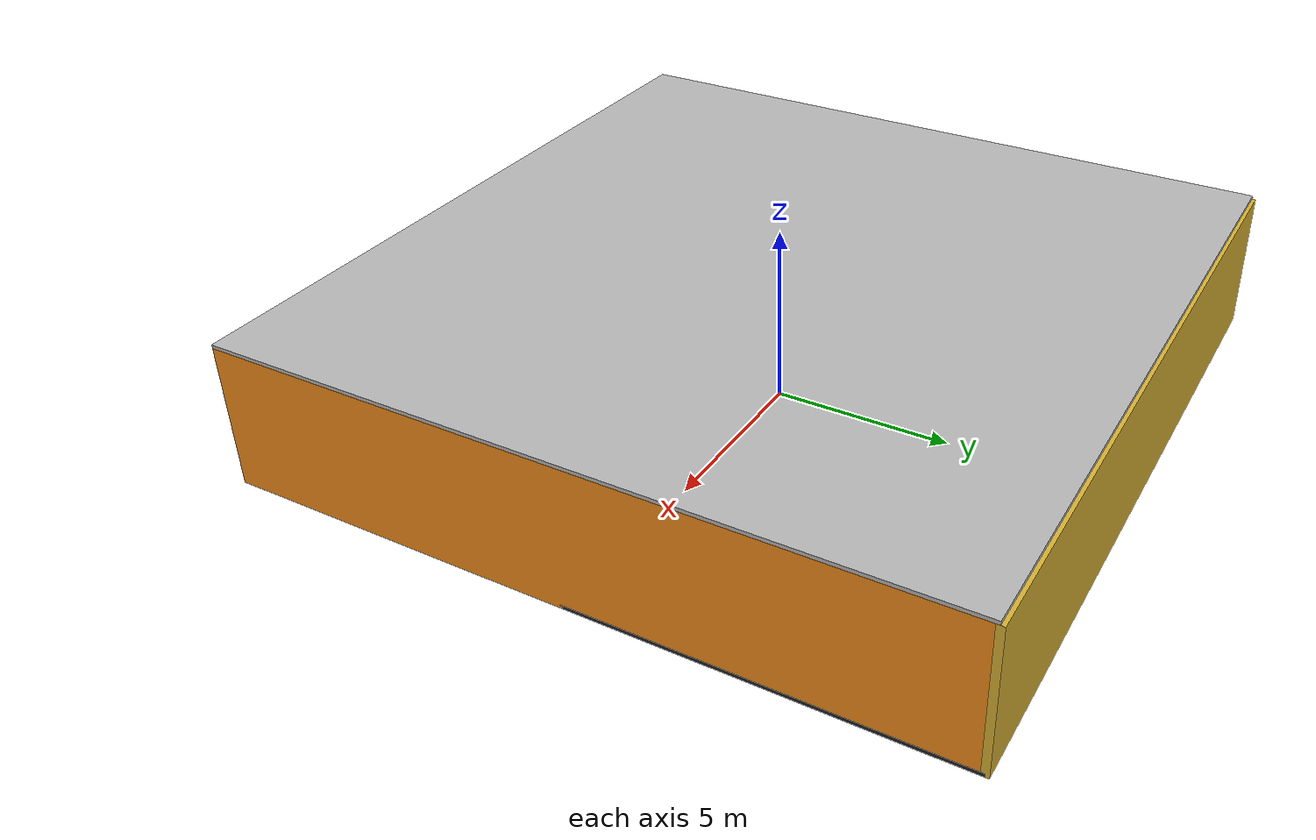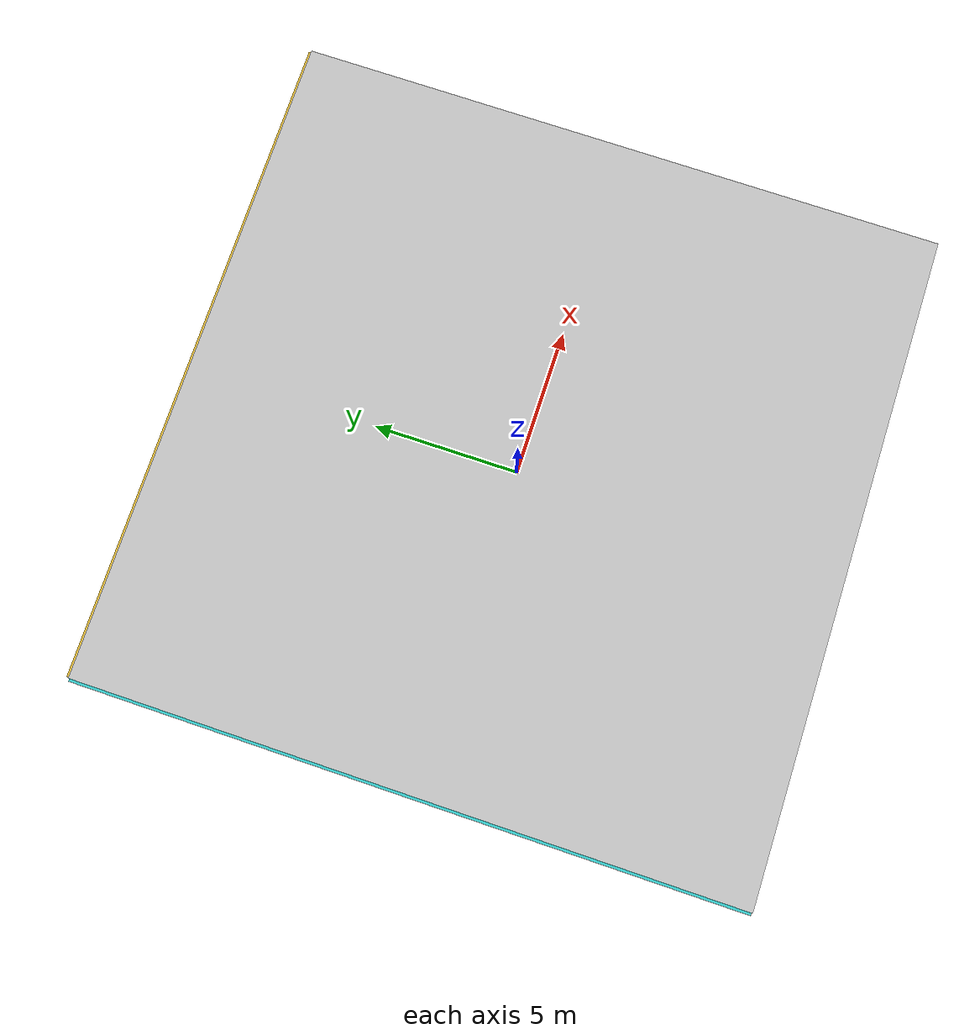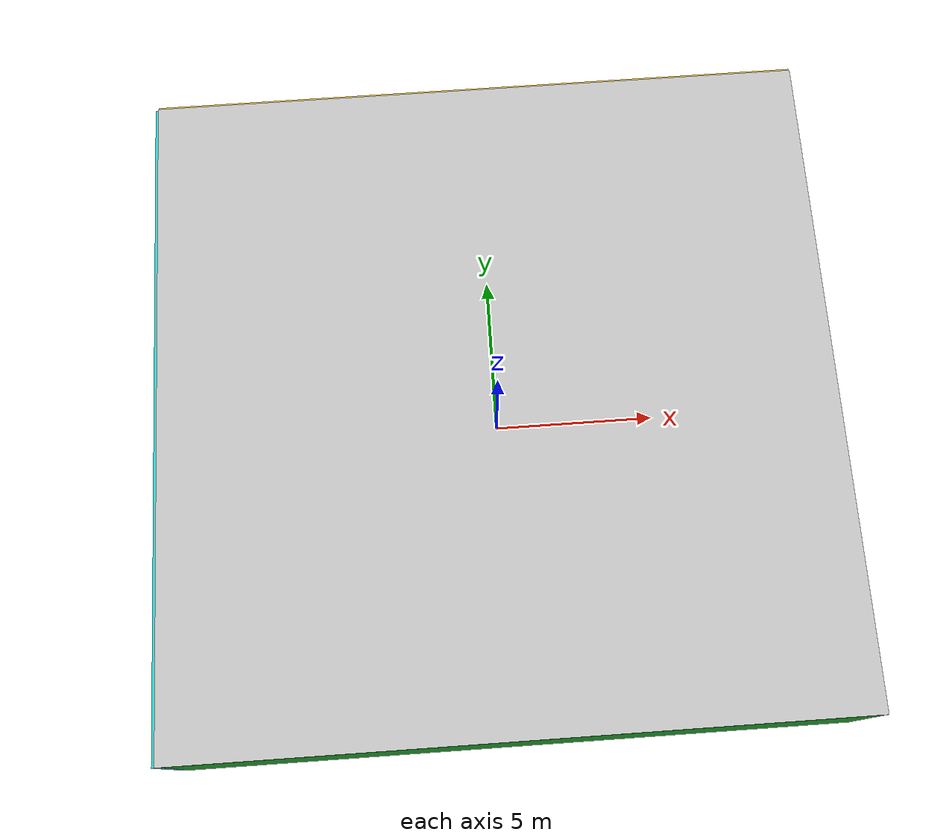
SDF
<sdf version="1.4">
 <world name="default">
  <physics type="ode">
   <max_step_size>0.001</max_step_size>
   <real_time_factor>1</real_time_factor>
   <real_time_update_rate>1000</real_time_update_rate>
   <gravity>0 0 -9.8</gravity>
  </physics>
  <scene><ambient>0.4 0.4 0.4 1</ambient><background>0.7 0.7 0.7 1</background><shadows>1</shadows></scene>
  <model name="Surrounding">
   <static>1</static>
   <link name="Ceiling">
    <collision name="Ceiling_Collision"><geometry><box><size>20 20 0.1</size></box></geometry></collision>
    <visual name="Ceiling_Visual">
     <geometry><box><size>20 20 0.1</size></box></geometry>
     <material>
      <script><uri>file://media/materials/scripts/gazebo.material</uri><name>Gazebo/LightOff</name></script>
     </material>
    </visual>
    <pose>0 0 4.05 0 0 0</pose>
   </link>
   <link name="Wall_South">
    <collision name="Wall_South_Collision">
     <geometry><box><size>20 0 4</size></box></geometry>
     <pose>0 0 2 0 -0 0</pose>
    </collision>
    <visual name="Wall_South_Visual">
     <pose>0 0 2 0 -0 0</pose>
     <geometry><box><size>20 0 4</size></box></geometry>
     <material>
      <script><uri>file://media/materials/scripts/gazebo.material</uri><name>Gazebo/GreenGlow</name></script>
     </material>
    </visual>
    <velocity_decay><linear>0</linear><angular>0</angular></velocity_decay>
    <pose>0 -10 0 0 -0 0</pose>
   </link>
   <link name="Wall_East">
    <collision name="Wall_21_Collision">
     <geometry><box><size>20 0 4</size></box></geometry>
     <pose>0 0 2 0 -0 0</pose>
    </collision>
    <visual name="Wall_21_Visual">
     <pose>0 0 2 0 -0 0</pose>
     <geometry><box><size>20 0 4</size></box></geometry>
     <material>
      <script><uri>file://media/materials/scripts/gazebo.material</uri><name>Gazebo/Orange</name></script>
     </material>
    </visual>
    <velocity_decay><linear>0</linear><angular>0</angular></velocity_decay>
    <pose>10 0 0 0 -0 1.5708</pose>
   </link>
   <link name="Wall_North">
    <collision name="Wall_22_Collision">
     <geometry><box><size>20 0.2 4</size></box></geometry>
     <pose>0 0 2 0 -0 0</pose>
    </collision>
    <visual name="Wall_22_Visual">
     <pose>0 0 2 0 -0 0</pose>
     <geometry><box><size>20 0.2 4</size></box></geometry>
     <material>
      <script><uri>file://media/materials/scripts/gazebo.material</uri><name>Gazebo/Gold</name></script>
     </material>
    </visual>
    <velocity_decay><linear>0</linear><angular>0</angular></velocity_decay>
    <pose>0 10 0 0 -0 0</pose>
   </link>
   <link name="Wall_West">
    <collision name="Wall_23_Collision">
     <geometry><box><size>20 0.2 4</size></box></geometry>
     <pose>0 0 2 0 -0 0</pose>
    </collision>
    <visual name="Wall_23_Visual">
     <pose>0 0 2 0 -0 0</pose>
     <geometry><box><size>20 0.2 4</size></box></geometry>
     <material>
      <script><uri>file://media/materials/scripts/gazebo.material</uri><name>Gazebo/TurquoiseGlow</name></script>
     </material>
    </visual>
    <velocity_decay><linear>0</linear><angular>0</angular></velocity_decay>
    <pose>-10 0 0 0 0 -1.5708</pose>
   </link>
   <link name="Ground_link">
    <collision name="collision">
     <pose>0 0 .05 0 -0 0</pose>
     <geometry><box><size>20 20 0.1</size></box></geometry>
    </collision>
    <visual name="visual">
     <pose>0 0 .05 0 -0 0</pose>
     <geometry><box><size>20 20 0.1</size></box></geometry>
     <material>
      <script><uri>file://media/materials/scripts/gazebo.material</uri><name>Gazebo/Black</name></script>
     </material>
    </visual>
   </link>
   <static>1</static>
  </model>
  <spherical_coordinates>
   <surface_model>EARTH_WGS84</surface_model>
   <latitude_deg>0</latitude_deg>
   <longitude_deg>0</longitude_deg>
   <elevation>0</elevation>
   <heading_deg>0</heading_deg>
  </spherical_coordinates>
  <light name="lightball_0" type="diffuse">
   <diffuse>0.8 0.8 0.8 1</diffuse>
   <specular>0.2 0.2 0.2 1</specular>
   <attenuation>
    <range>100</range>
    <constant>0.7</constant>
    <linear>0.01</linear>
    <quadratic>0.001</quadratic>
   </attenuation>
   <direction>-0.5 0.1 -0.9</direction>
   <pose>-8.20583627101 6.91166579624 1.84177824782 0 0 0</pose>
  </light>
  <light name="lightball_1" type="diffuse">
   <diffuse>0.8 0.8 0.8 1</diffuse>
   <specular>0.2 0.2 0.2 1</specular>
   <attenuation>
    <range>100</range>
    <constant>0.7</constant>
    <linear>0.01</linear>
    <quadratic>0.001</quadratic>
   </attenuation>
   <direction>-0.5 0.1 -0.9</direction>
   <pose>-0.273360922326 3.80337348867 3.53818586408 0 0 0</pose>
  </light>
  <light name="lightball_2" type="diffuse">
   <diffuse>0.8 0.8 0.8 1</diffuse>
   <specular>0.2 0.2 0.2 1</specular>
   <attenuation>
    <range>100</range>
    <constant>0.7</constant>
    <linear>0.01</linear>
    <quadratic>0.001</quadratic>
   </attenuation>
   <direction>-0.5 0.1 -0.9</direction>
   <pose>-1.79795125022 6.25640458212 0.930809308781 0 0 0</pose>
  </light>
  <light name="lightball_3" type="diffuse">
   <diffuse>0.8 0.8 0.8 1</diffuse>
   <specular>0.2 0.2 0.2 1</specular>
   <attenuation>
    <range>100</range>
    <constant>0.7</constant>
    <linear>0.01</linear>
    <quadratic>0.001</quadratic>
   </attenuation>
   <direction>-0.5 0.1 -0.9</direction>
   <pose>9.29674764419 1.74160772196 1.50237307865 0 0 0</pose>
  </light>
  <light name="lightball_4" type="diffuse">
   <diffuse>0.8 0.8 0.8 1</diffuse>
   <specular>0.2 0.2 0.2 1</specular>
   <attenuation>
    <range>100</range>
    <constant>0.7</constant>
    <linear>0.01</linear>
    <quadratic>0.001</quadratic>
   </attenuation>
   <direction>-0.5 0.1 -0.9</direction>
   <pose>-3.6403155127 1.629825554 2.34377560576 0 0 0</pose>
  </light>
  <light name="lightball_5" type="diffuse">
   <diffuse>0.8 0.8 0.8 1</diffuse>
   <specular>0.2 0.2 0.2 1</specular>
   <attenuation>
    <range>100</range>
    <constant>0.7</constant>
    <linear>0.01</linear>
    <quadratic>0.001</quadratic>
   </attenuation>
   <direction>-0.5 0.1 -0.9</direction>
   <pose>6.1343463064 -4.41037044217 2.81664612785 0 0 0</pose>
  </light>
  <light name="lightball_6" type="diffuse">
   <diffuse>0.8 0.8 0.8 1</diffuse>
   <specular>0.2 0.2 0.2 1</specular>
   <attenuation>
    <range>100</range>
    <constant>0.7</constant>
    <linear>0.01</linear>
    <quadratic>0.001</quadratic>
   </attenuation>
   <direction>-0.5 0.1 -0.9</direction>
   <pose>5.43853108122 -9.65918071858 1.44317976763 0 0 0</pose>
  </light>
  <light name="lightball_7" type="diffuse">
   <diffuse>0.8 0.8 0.8 1</diffuse>
   <specular>0.2 0.2 0.2 1</specular>
   <attenuation>
    <range>100</range>
    <constant>0.7</constant>
    <linear>0.01</linear>
    <quadratic>0.001</quadratic>
   </attenuation>
   <direction>-0.5 0.1 -0.9</direction>
   <pose>-0.87796935273 5.00149254922 1.01717968562 0 0 0</pose>
  </light>
  <light name="lightball_8" type="diffuse">
   <diffuse>0.8 0.8 0.8 1</diffuse>
   <specular>0.2 0.2 0.2 1</specular>
   <attenuation>
    <range>100</range>
    <constant>0.7</constant>
    <linear>0.01</linear>
    <quadratic>0.001</quadratic>
   </attenuation>
   <direction>-0.5 0.1 -0.9</direction>
   <pose>8.83259303006 -2.96395446758 3.15126691799 0 0 0</pose>
  </light>
  <light name="lightball_9" type="diffuse">
   <diffuse>0.8 0.8 0.8 1</diffuse>
   <specular>0.2 0.2 0.2 1</specular>
   <attenuation>
    <range>100</range>
    <constant>0.7</constant>
    <linear>0.01</linear>
    <quadratic>0.001</quadratic>
   </attenuation>
   <direction>-0.5 0.1 -0.9</direction>
   <pose>-1.03877069513 5.09976101863 3.12523720978 0 0 0</pose>
  </light>
  <light name="lightball_10" type="diffuse">
   <diffuse>0.8 0.8 0.8 1</diffuse>
   <specular>0.2 0.2 0.2 1</specular>
   <attenuation>
    <range>100</range>
    <constant>0.7</constant>
    <linear>0.01</linear>
    <quadratic>0.001</quadratic>
   </attenuation>
   <direction>-0.5 0.1 -0.9</direction>
   <pose>2.26955251777 -4.22648304193 2.79585931645 0 0 0</pose>
  </light>
  <light name="lightball_11" type="diffuse">
   <diffuse>0.8 0.8 0.8 1</diffuse>
   <specular>0.2 0.2 0.2 1</specular>
   <attenuation>
    <range>100</range>
    <constant>0.7</constant>
    <linear>0.01</linear>
    <quadratic>0.001</quadratic>
   </attenuation>
   <direction>-0.5 0.1 -0.9</direction>
   <pose>8.20604410963 2.99455860391 0.643184568942 0 0 0</pose>
  </light>
  <light name="lightball_12" type="diffuse">
   <diffuse>0.8 0.8 0.8 1</diffuse>
   <specular>0.2 0.2 0.2 1</specular>
   <attenuation>
    <range>100</range>
    <constant>0.7</constant>
    <linear>0.01</linear>
    <quadratic>0.001</quadratic>
   </attenuation>
   <direction>-0.5 0.1 -0.9</direction>
   <pose>6.51235587384 6.19067431107 3.76483748982 0 0 0</pose>
  </light>
  <light name="lightball_13" type="diffuse">
   <diffuse>0.8 0.8 0.8 1</diffuse>
   <specular>0.2 0.2 0.2 1</specular>
   <attenuation>
    <range>100</range>
    <constant>0.7</constant>
    <linear>0.01</linear>
    <quadratic>0.001</quadratic>
   </attenuation>
   <direction>-0.5 0.1 -0.9</direction>
   <pose>-2.64685627808 0.575764258981 1.72012051757 0 0 0</pose>
  </light>
  <include><uri>model://cabinet</uri><pose>-7.56090181845 0.911597414856 0 0 0 0.698604026383</pose></include>
  <include><uri>model://cabinet</uri><pose>-0.767331648393 -4.74853362312 0 0 0 1.84506118336</pose></include>
  <include>
   <uri>model://textured_shapes</uri>
   <pose>-0.948938077378 3.70927722747 0 0 0 3.02001385686</pose>
  </include>
  <include><uri>model://cabinet</uri><pose>5.24408865547 -6.78600394665 0 0 0 2.89529620242</pose></include>
  <include>
   <uri>model://textured_shapes</uri>
   <pose>7.67998333521 -7.76762678245 0 0 0 0.582789538465</pose>
  </include>
  <include><uri>model://cabinet</uri><pose>7.20946815527 5.13037659177 0 0 0 2.4348751508</pose></include>
 </world>
</sdf>

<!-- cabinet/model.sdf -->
<sdf version="1.5">
  <model name="cabinet">
    <static>true</static>
    <link name="cabinet_bottom_plate">
      <inertial>
        <pose>0 0 -1 0 0 0</pose>
        <inertia>
          <ixx>2.050000</ixx>
          <ixy>0</ixy>
          <ixz>0</ixz>
          <iyy>2.050000</iyy>
          <iyz>0</iyz>
          <izz>2.050000</izz>
        </inertia>
        <mass>25.000000</mass>
      </inertial>
      <collision name="cabinet_bottom_plate_geom">
        <pose>0 0 0.010000 0 0 0</pose>
        <geometry>
          <box>
            <size>0.450000 0.450000 0.020000</size>
          </box>
        </geometry>
      </collision>
      <visual name="cabinet_bottom_plate_geom_visual">
        <pose>0 0 0.010000 0 0 0</pose>
        <geometry>
          <box>
            <size>0.450000 0.450000 0.020000</size>
          </box>
        </geometry>
        <material>
          <script>
            <uri>model://media/materials/scripts/gazebo.material</uri>
            <name>Gazebo/Wood</name>
          </script>
        </material>
      </visual>
      <collision name="cabinet_bottom_plate_geom_cabinet_back_plate">
        <pose>0.235000 0 0.510000 0 0 0</pose>
        <geometry>
          <box>
            <size>0.020000 0.450000 1.020000</size>
          </box>
        </geometry>
      </collision>
      <visual name="cabinet_bottom_plate_geom_cabinet_back_plate_visual">
        <pose>0.235000 0 0.510000 0 0 0</pose>
        <geometry>
          <box>
            <size>0.020000 0.450000 1.020000</size>
          </box>
        </geometry>
        <material>
          <script>
            <uri>model://media/materials/scripts/gazebo.material</uri>
            <name>Gazebo/Wood</name>
          </script>
        </material>
      </visual>
      <collision name="cabinet_bottom_plate_geom_cabinet_left_plate">
        <pose>0 0.235000 0.510000 0 0 0</pose>
        <geometry>
          <box>
            <size>0.450000 0.020000 1.020000</size>
          </box>
        </geometry>
      </collision>
      <visual name="cabinet_bottom_plate_geom_cabinet_left_plate_visual">
        <pose>0 0.235000 0.510000 0 0 0</pose>
        <geometry>
          <box>
            <size>0.450000 0.020000 1.020000</size>
          </box>
        </geometry>
        <material>
          <script>
            <uri>model://media/materials/scripts/gazebo.material</uri>
            <name>Gazebo/Wood</name>
          </script>
        </material>
      </visual>
      <collision name="cabinet_bottom_plate_geom_cabinet_middle_plate">
        <pose>0 0 0.510000 0 0 0</pose>
        <geometry>
          <box>
            <size>0.450000 0.450000 0.020000</size>
          </box>
        </geometry>
      </collision>
      <visual name="cabinet_bottom_plate_geom_cabinet_middle_plate_visual">
        <pose>0 0 0.510000 0 0 0</pose>
        <geometry>
          <box>
            <size>0.450000 0.450000 0.020000</size>
          </box>
        </geometry>
        <material>
          <script>
            <uri>model://media/materials/scripts/gazebo.material</uri>
            <name>Gazebo/Wood</name>
          </script>
        </material>
      </visual>
      <collision name="cabinet_bottom_plate_geom_cabinet_right_plate">
        <pose>0 -0.235000 0.510000 0 0 0</pose>
        <geometry>
          <box>
            <size>0.450000 0.020000 1.020000</size>
          </box>
        </geometry>
      </collision>
      <visual name="cabinet_bottom_plate_geom_cabinet_right_plate_visual">
        <pose>0 -0.235000 0.510000 0 0 0</pose>
        <geometry>
          <box>
            <size>0.450000 0.020000 1.020000</size>
          </box>
        </geometry>
        <material>
          <script>
            <uri>model://media/materials/scripts/gazebo.material</uri>
            <name>Gazebo/Wood</name>
          </script>
        </material>
      </visual>
      <collision name="cabinet_bottom_plate_geom_cabinet_top_plate">
        <pose>0 0 1.010000 0 0 0</pose>
        <geometry>
          <box>
            <size>0.450000 0.450000 0.020000</size>
          </box>
        </geometry>
      </collision>
      <visual name="cabinet_bottom_plate_geom_cabinet_top_plate_visual">
        <pose>0 0 1.010000 0 0 0</pose>
        <geometry>
          <box>
            <size>0.450000 0.450000 0.020000</size>
          </box>
        </geometry>
        <material>
          <script>
            <uri>model://media/materials/scripts/gazebo.material</uri>
            <name>Gazebo/Wood</name>
          </script>
        </material>
      </visual>
    </link>
  </model>
</sdf>

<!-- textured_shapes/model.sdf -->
<sdf version="1.6">
  <model name="textured_shapes">
    <pose>0 0 0.5 0 0 0</pose>
    <link name="box">
      <pose>0 -1.5 0 0 0 0</pose>
      <collision name="collision">
        <geometry>
          <box>
            <size>1 1 1</size>
          </box>
        </geometry>
      </collision>
      <visual name="visual">
        <geometry>
          <box>
            <size>1 1 1</size>
          </box>
        </geometry>
        <material>
          <script>
            <uri>model://../model_source/models/textured_shapes/materials/scripts</uri>
            <uri>model://../model_source/models/textured_shapes/materials/textures</uri>
            <name>TexturedShape/Squares</name>
          </script>
        </material>
      </visual>
    </link>
    <link name="sphere">
      <collision name="collision">
        <geometry>
          <sphere>
            <radius>0.5</radius>
          </sphere>
        </geometry>
      </collision>
      <visual name="visual">
        <geometry>
          <sphere>
            <radius>0.5</radius>
          </sphere>
        </geometry>
        <material>
          <script>
            <uri>model://../model_source/models/textured_shapes/materials/scripts</uri>
            <uri>model://../model_source/models/textured_shapes/materials/textures</uri>
            <name>TexturedShape/Squares</name>
          </script>
        </material>
      </visual>
    </link>
    <link name="cylinder">
      <pose>0 1.5 0 0 0 0</pose>
      <collision name="collision">
        <geometry>
          <cylinder>
            <radius>0.5</radius>
            <length>1</length>
          </cylinder>
        </geometry>
      </collision>
      <visual name="visual">
        <geometry>
          <cylinder>
            <radius>0.5</radius>
            <length>1</length>
          </cylinder>
        </geometry>
        <material>
          <script>
            <uri>model://../model_source/models/textured_shapes/materials/scripts</uri>
            <uri>model://../model_source/models/textured_shapes/materials/textures</uri>
            <name>TexturedShape/Squares</name>
          </script>
        </material>
      </visual>
    </link>
  </model>
</sdf>
